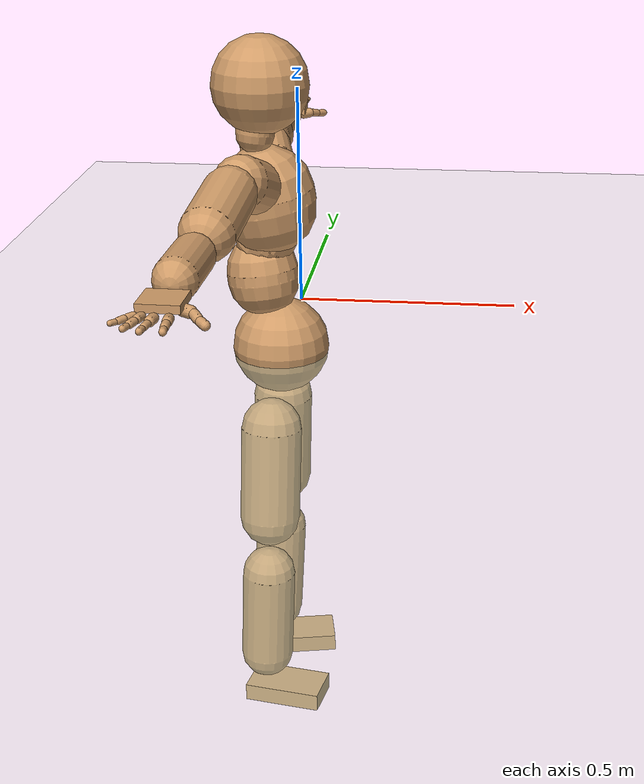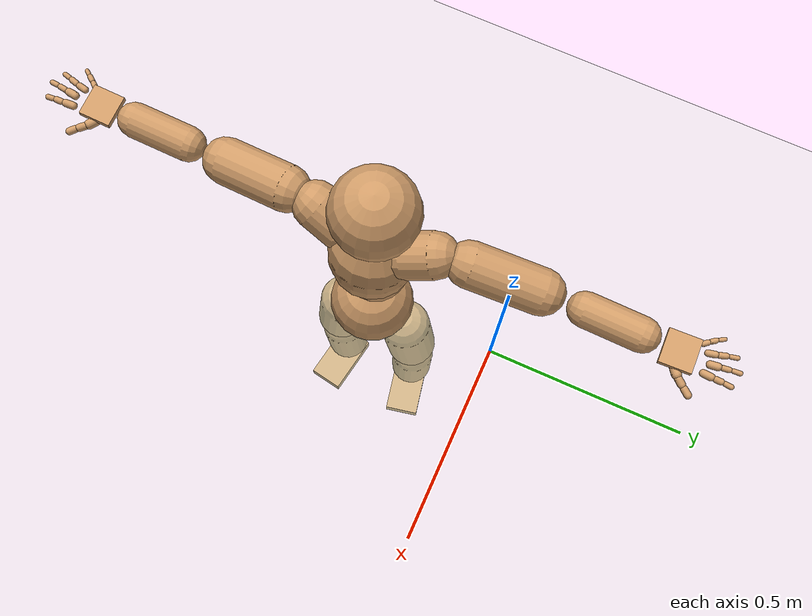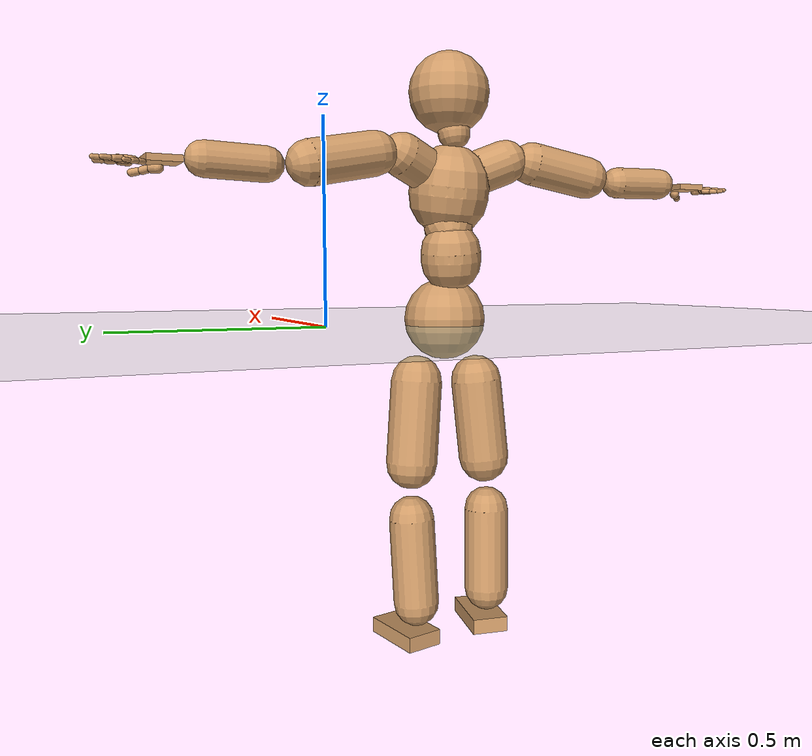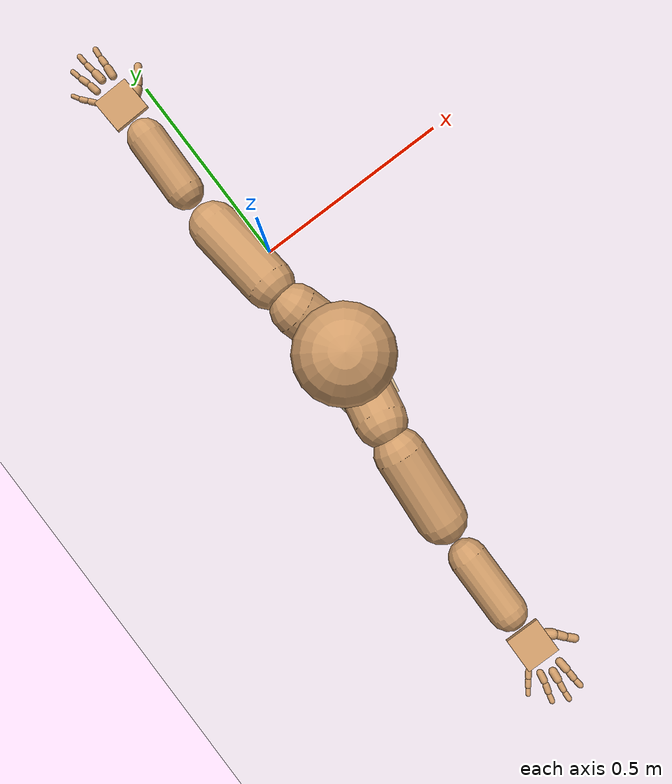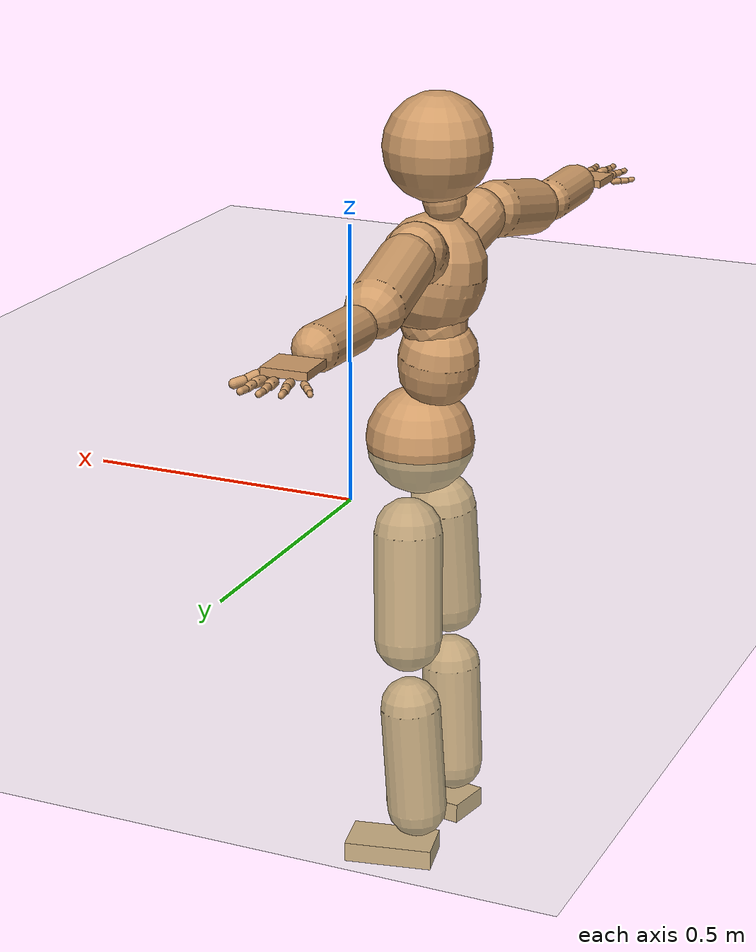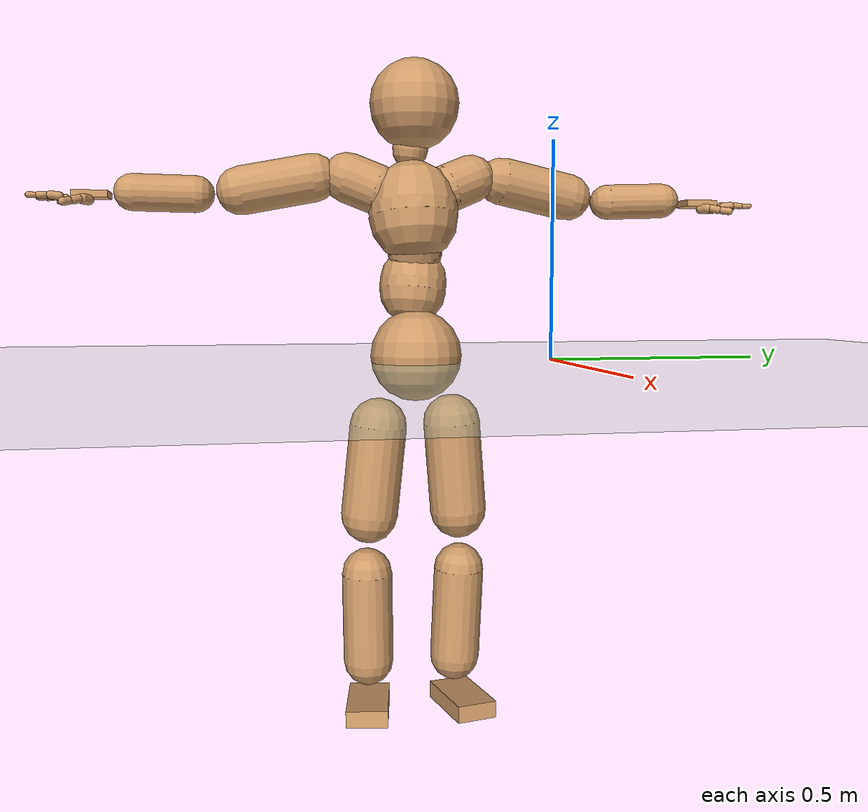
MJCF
<mujoco model="humanoid">
  <compiler coordinate="local" angle="radian"/>
  <default>
    <joint damping="0.0" armature="0.01" stiffness="0.0" limited="true"/>
    <geom conaffinity="1" condim="3" contype="7" margin="0.001" rgba="0.8 0.6 .4 1"/>
  </default>
  <asset>
    <texture type="skybox" builtin="gradient" rgb1=".4 .5 .6" rgb2="0 0 0" width="100" height="100"/>
    <texture builtin="flat" height="1278" mark="cross" markrgb="1 1 1" name="texgeom" random="0.01" rgb1="0.8 0.6 0.4" rgb2="0.8 0.6 0.4" type="cube" width="127"/>
    <texture builtin="checker" height="100" name="texplane" rgb1="0 0 0" rgb2="0.8 0.8 0.8" type="2d" width="100"/>
    <material name="MatPlane" reflectance="0.5" shininess="1" specular="1" texrepeat="60 60" texture="texplane"/>
    <material name="geom" texture="texgeom" texuniform="true"/>
  </asset>
  <worldbody>
    <light cutoff="100" diffuse="1 1 1" dir="-0 0 -1.3" directional="true" exponent="1" pos="0 0 1.3" specular=".1 .1 .1"/>
    <geom conaffinity="1" condim="3" name="floor" pos="0 0 0" rgba="0.8 0.9 0.8 1" size="100 100 .2" type="plane" material="MatPlane"/>
    <body name="Pelvis" pos="0.0008 -0.3178 0.0141">
      <freejoint name="Pelvis"/>
      <geom type="sphere" contype="1" conaffinity="1" density="500" size="0.1032" pos="0.0000 0.0000 0.0000" name="Pelvis"/>
      <body name="L_Hip" pos="-0.0099 0.0789 -0.0863">
        <joint name="L_Hip_x" type="hinge" pos="0 0 0" axis="1 0 0" stiffness="800" damping="80" armature="0.02" range="-180.0000 180.0000"/>
        <joint name="L_Hip_y" type="hinge" pos="0 0 0" axis="0 1 0" stiffness="800" damping="80" armature="0.02" range="-180.0000 180.0000"/>
        <joint name="L_Hip_z" type="hinge" pos="0 0 0" axis="0 0 1" stiffness="800" damping="80" armature="0.02" range="-180.0000 180.0000"/>
        <geom type="capsule" contype="1" conaffinity="1" density="500" fromto="-0.0030 0.0059 -0.0690 -0.0121 0.0237 -0.2758" size="0.0646" name="L_Hip"/>
        <body name="L_Knee" pos="-0.0152 0.0296 -0.3448">
          <joint name="L_Knee_x" type="hinge" pos="0 0 0" axis="1 0 0" stiffness="800" damping="80" armature="0.02" range="-180.0000 180.0000"/>
          <joint name="L_Knee_y" type="hinge" pos="0 0 0" axis="0 1 0" stiffness="800" damping="80" armature="0.02" range="-180.0000 180.0000"/>
          <joint name="L_Knee_z" type="hinge" pos="0 0 0" axis="0 0 1" stiffness="800" damping="80" armature="0.02" range="-180.0000 180.0000"/>
          <geom type="capsule" contype="1" conaffinity="1" density="500" fromto="-0.0042 -0.0022 -0.0715 -0.0167 -0.0089 -0.2858" size="0.0573" name="L_Knee"/>
          <body name="L_Ankle" pos="-0.0209 -0.0111 -0.3573">
            <joint name="L_Ankle_x" type="hinge" pos="0 0 0" axis="1 0 0" stiffness="800" damping="80" armature="0.02" range="-180.0000 180.0000"/>
            <joint name="L_Ankle_y" type="hinge" pos="0 0 0" axis="0 1 0" stiffness="800" damping="80" armature="0.02" range="-180.0000 180.0000"/>
            <joint name="L_Ankle_z" type="hinge" pos="0 0 0" axis="0 0 1" stiffness="800" damping="80" armature="0.02" range="-180.0000 180.0000"/>
            <geom type="box" contype="1" conaffinity="1" density="500" pos="0.0523 0.0106 -0.0200" size="0.0846 0.0467 0.0192" quat="0.9950 0.0000 0.0000 0.0995" name="L_Ankle"/>
            <body name="L_Toe" pos="0.1045 0.0211 -0.04">
              <joint name="L_Toe_x" type="hinge" pos="0 0 0" axis="1 0 0" stiffness="500" damping="50" armature="0.02" range="-180.0000 180.0000"/>
              <joint name="L_Toe_y" type="hinge" pos="0 0 0" axis="0 1 0" stiffness="500" damping="50" armature="0.02" range="-180.0000 180.0000"/>
              <joint name="L_Toe_z" type="hinge" pos="0 0 0" axis="0 0 1" stiffness="500" damping="50" armature="0.02" range="-180.0000 180.0000"/>
              <geom type="box" contype="1" conaffinity="1" density="500" pos="0.0000 0.0000 0.0211" size="0.0009 0.0023 0.001" quat="0.9943 0.0000 0.0000 0.1067" name="L_Toe"/>
            </body>
          </body>
        </body>
      </body>
      <body name="R_Hip" pos="-0.0105 -0.0779 -0.0924">
        <joint name="R_Hip_x" type="hinge" pos="0 0 0" axis="1 0 0" stiffness="800" damping="80" armature="0.02" range="-180.0000 180.0000"/>
        <joint name="R_Hip_y" type="hinge" pos="0 0 0" axis="0 1 0" stiffness="800" damping="80" armature="0.02" range="-180.0000 180.0000"/>
        <joint name="R_Hip_z" type="hinge" pos="0 0 0" axis="0 0 1" stiffness="800" damping="80" armature="0.02" range="-180.0000 180.0000"/>
        <geom type="capsule" contype="1" conaffinity="1" density="500" fromto="-0.0019 -0.0069 -0.0682 -0.0074 -0.0275 -0.2727" size="0.0644" name="R_Hip"/>
        <body name="R_Knee" pos="-0.0093 -0.0344 -0.3409">
          <joint name="R_Knee_x" type="hinge" pos="0 0 0" axis="1 0 0" stiffness="800" damping="80" armature="0.02" range="-180.0000 180.0000"/>
          <joint name="R_Knee_y" type="hinge" pos="0 0 0" axis="0 1 0" stiffness="800" damping="80" armature="0.02" range="-180.0000 180.0000"/>
          <joint name="R_Knee_z" type="hinge" pos="0 0 0" axis="0 0 1" stiffness="800" damping="80" armature="0.02" range="-180.0000 180.0000"/>
          <geom type="capsule" contype="1" conaffinity="1" density="500" fromto="-0.0035 0.0013 -0.0698 -0.0139 0.0053 -0.2791" size="0.0573" name="R_Knee"/>
          <body name="R_Ankle" pos="-0.0174 0.0066 -0.3489">
            <joint name="R_Ankle_x" type="hinge" pos="0 0 0" axis="1 0 0" stiffness="800" damping="80" armature="0.02" range="-180.0000 180.0000"/>
            <joint name="R_Ankle_y" type="hinge" pos="0 0 0" axis="0 1 0" stiffness="800" damping="80" armature="0.02" range="-180.0000 180.0000"/>
            <joint name="R_Ankle_z" type="hinge" pos="0 0 0" axis="0 0 1" stiffness="800" damping="80" armature="0.02" range="-180.0000 180.0000"/>
            <geom type="box" contype="1" conaffinity="1" density="500" pos="0.0491 -0.0086 -0.0216" size="0.0846 0.0467 0.0192" quat="0.9962 0.0000 0.0000 -0.0866" name="R_Ankle"/>
            <body name="R_Toe" pos="0.0982 -0.0172 -0.0433">
              <joint name="R_Toe_x" type="hinge" pos="0 0 0" axis="1 0 0" stiffness="500" damping="50" armature="0.02" range="-180.0000 180.0000"/>
              <joint name="R_Toe_y" type="hinge" pos="0 0 0" axis="0 1 0" stiffness="500" damping="50" armature="0.02" range="-180.0000 180.0000"/>
              <joint name="R_Toe_z" type="hinge" pos="0 0 0" axis="0 0 1" stiffness="500" damping="50" armature="0.02" range="-180.0000 180.0000"/>
              <geom type="box" contype="1" conaffinity="1" density="500" pos="0.0000 0.0000 0.0227" size="0.0009 0.0023 0.001" quat="0.9972 0.0000 0.0000 -0.0752" name="R_Toe"/>
            </body>
          </body>
        </body>
      </body>
      <body name="Torso" pos="-0.0273 -0.0061 0.1003">
        <joint name="Torso_x" type="hinge" pos="0 0 0" axis="1 0 0" stiffness="1000" damping="100" armature="0.02" range="-180.0000 180.0000"/>
        <joint name="Torso_y" type="hinge" pos="0 0 0" axis="0 1 0" stiffness="1000" damping="100" armature="0.02" range="-180.0000 180.0000"/>
        <joint name="Torso_z" type="hinge" pos="0 0 0" axis="0 0 1" stiffness="1000" damping="100" armature="0.02" range="-180.0000 180.0000"/>
        <geom type="capsule" contype="1" conaffinity="1" density="500" fromto="-0.0087 0.0067 0.0676 -0.0058 0.0045 0.0450" size="0.0757" name="Torso"/>
        <body name="Spine" pos="-0.0146 0.0112 0.1126">
          <joint name="Spine_x" type="hinge" pos="0 0 0" axis="1 0 0" stiffness="1000" damping="100" armature="0.02" range="-180.0000 180.0000"/>
          <joint name="Spine_y" type="hinge" pos="0 0 0" axis="0 1 0" stiffness="1000" damping="100" armature="0.02" range="-180.0000 180.0000"/>
          <joint name="Spine_z" type="hinge" pos="0 0 0" axis="0 0 1" stiffness="1000" damping="100" armature="0.02" range="-180.0000 180.0000"/>
          <geom type="capsule" contype="1" conaffinity="1" density="500" fromto="0.0200 -0.0033 0.0261 0.0133 -0.0022 0.0174" size="0.0616" name="Spine"/>
          <body name="Chest" pos="0.0333 -0.0056 0.0435">
            <joint name="Chest_x" type="hinge" pos="0 0 0" axis="1 0 0" stiffness="1000" damping="100" armature="0.02" range="-180.0000 180.0000"/>
            <joint name="Chest_y" type="hinge" pos="0 0 0" axis="0 1 0" stiffness="1000" damping="100" armature="0.02" range="-180.0000 180.0000"/>
            <joint name="Chest_z" type="hinge" pos="0 0 0" axis="0 0 1" stiffness="1000" damping="100" armature="0.02" range="-180.0000 180.0000"/>
            <geom type="capsule" contype="1" conaffinity="1" density="500" fromto="-0.0135 -0.0021 0.0783 -0.0090 -0.0014 0.0522" size="0.1008" name="Chest"/>
            <body name="Neck" pos="-0.0359 -0.0067 0.1788">
              <joint name="Neck_x" type="hinge" pos="0 0 0" axis="1 0 0" stiffness="500" damping="50" armature="0.02" range="-180.0000 180.0000"/>
              <joint name="Neck_y" type="hinge" pos="0 0 0" axis="0 1 0" stiffness="500" damping="50" armature="0.02" range="-180.0000 180.0000"/>
              <joint name="Neck_z" type="hinge" pos="0 0 0" axis="0 0 1" stiffness="500" damping="50" armature="0.02" range="-180.0000 180.0000"/>
              <geom type="capsule" contype="1" conaffinity="1" density="500" fromto="0.0031 0.0019 0.0247 0.0123 0.0075 0.0988" size="0.0404" name="Neck"/>
              <body name="Head" pos="0.0154 0.0094 0.1235">
                <joint name="Head_x" type="hinge" pos="0 0 0" axis="1 0 0" stiffness="500" damping="50" armature="0.02" range="-180.0000 180.0000"/>
                <joint name="Head_y" type="hinge" pos="0 0 0" axis="0 1 0" stiffness="500" damping="50" armature="0.02" range="-180.0000 180.0000"/>
                <joint name="Head_z" type="hinge" pos="0 0 0" axis="0 0 1" stiffness="500" damping="50" armature="0.02" range="-180.0000 180.0000"/>
                <geom type="sphere" contype="1" conaffinity="1" density="500" size="0.1008" pos="0.0000 0.0000 0.0000" name="Head"/>
              </body>
            </body>
            <body name="L_Thorax" pos="-0.0123 0.0555 0.1081">
              <joint name="L_Thorax_x" type="hinge" pos="0 0 0" axis="1 0 0" stiffness="500" damping="50" armature="0.02" range="-180.0000 180.0000"/>
              <joint name="L_Thorax_y" type="hinge" pos="0 0 0" axis="0 1 0" stiffness="500" damping="50" armature="0.02" range="-180.0000 180.0000"/>
              <joint name="L_Thorax_z" type="hinge" pos="0 0 0" axis="0 0 1" stiffness="500" damping="50" armature="0.02" range="-180.0000 180.0000"/>
              <geom type="capsule" contype="1" conaffinity="1" density="500" fromto="-0.0062 0.0201 0.0086 -0.0247 0.0806 0.0343" size="0.0544" name="L_Thorax"/>
              <body name="L_Shoulder" pos="-0.0309 0.1007 0.0429">
                <joint name="L_Shoulder_x" type="hinge" pos="0 0 0" axis="1 0 0" stiffness="500" damping="50" armature="0.02" range="-180.0000 180.0000"/>
                <joint name="L_Shoulder_y" type="hinge" pos="0 0 0" axis="0 1 0" stiffness="500" damping="50" armature="0.02" range="-180.0000 180.0000"/>
                <joint name="L_Shoulder_z" type="hinge" pos="0 0 0" axis="0 0 1" stiffness="500" damping="50" armature="0.02" range="-180.0000 180.0000"/>
                <geom type="capsule" contype="1" conaffinity="1" density="500" fromto="-0.0057 0.0552 -0.0109 -0.0227 0.2208 -0.0436" size="0.0537" name="L_Shoulder"/>
                <body name="L_Elbow" pos="-0.0284 0.276 -0.0544">
                  <joint name="L_Elbow_x" type="hinge" pos="0 0 0" axis="1 0 0" stiffness="500" damping="50" armature="0.02" range="-720.0000 720.0000"/>
                  <joint name="L_Elbow_y" type="hinge" pos="0 0 0" axis="0 1 0" stiffness="500" damping="50" armature="0.02" range="-720.0000 720.0000"/>
                  <joint name="L_Elbow_z" type="hinge" pos="0 0 0" axis="0 0 1" stiffness="500" damping="50" armature="0.02" range="-720.0000 720.0000"/>
                  <geom type="capsule" contype="1" conaffinity="1" density="500" fromto="0.0012 0.0449 0.0016 0.0048 0.1796 0.0063" size="0.0406" name="L_Elbow"/>
                  <body name="L_Wrist" pos="0.006 0.2245 0.0078">
                    <joint name="L_Wrist_x" type="hinge" pos="0 0 0" axis="1 0 0" stiffness="300" damping="30" armature="0.02" range="-180.0000 180.0000"/>
                    <joint name="L_Wrist_y" type="hinge" pos="0 0 0" axis="0 1 0" stiffness="300" damping="30" armature="0.02" range="-180.0000 180.0000"/>
                    <joint name="L_Wrist_z" type="hinge" pos="0 0 0" axis="0 0 1" stiffness="300" damping="30" armature="0.02" range="-180.0000 180.0000"/>
                    <geom type="box" contype="1" conaffinity="1" density="500" pos="-0.0018 0.0422 -0.0082" size="0.0379 0.0404 0.0073" quat="0.7217 0.0000 0.0000 -0.6922" name="L_Wrist"/>
                    <body name="L_Index1" pos="0.0206 0.0994 -0.0146">
                      <joint name="L_Index1_x" type="hinge" pos="0 0 0" axis="1 0 0" stiffness="100" damping="10" armature="0.02" range="-180.0000 180.0000"/>
                      <joint name="L_Index1_y" type="hinge" pos="0 0 0" axis="0 1 0" stiffness="100" damping="10" armature="0.02" range="-180.0000 180.0000"/>
                      <joint name="L_Index1_z" type="hinge" pos="0 0 0" axis="0 0 1" stiffness="100" damping="10" armature="0.02" range="-180.0000 180.0000"/>
                      <geom type="capsule" contype="1" conaffinity="1" density="500" fromto="0.0006 0.0062 0.0005 0.0022 0.0246 0.0022" size="0.0088" name="L_Index1"/>
                      <body name="L_Index2" pos="0.0028 0.0308 0.0027">
                        <joint name="L_Index2_x" type="hinge" pos="0 0 0" axis="1 0 0" stiffness="100" damping="10" armature="0.02" range="-180.0000 180.0000"/>
                        <joint name="L_Index2_y" type="hinge" pos="0 0 0" axis="0 1 0" stiffness="100" damping="10" armature="0.02" range="-180.0000 180.0000"/>
                        <joint name="L_Index2_z" type="hinge" pos="0 0 0" axis="0 0 1" stiffness="100" damping="10" armature="0.02" range="-180.0000 180.0000"/>
                        <geom type="capsule" contype="1" conaffinity="1" density="500" fromto="0.0001 0.0044 -0.0003 0.0003 0.0174 -0.0011" size="0.0073" name="L_Index2"/>
                        <body name="L_Index3" pos="0.0004 0.0218 -0.0014">
                          <joint name="L_Index3_x" type="hinge" pos="0 0 0" axis="1 0 0" stiffness="100" damping="10" armature="0.02" range="-180.0000 180.0000"/>
                          <joint name="L_Index3_y" type="hinge" pos="0 0 0" axis="0 1 0" stiffness="100" damping="10" armature="0.02" range="-180.0000 180.0000"/>
                          <joint name="L_Index3_z" type="hinge" pos="0 0 0" axis="0 0 1" stiffness="100" damping="10" armature="0.02" range="-180.0000 180.0000"/>
                          <geom type="capsule" contype="1" conaffinity="1" density="500" fromto="0.0005 0.0048 0.0001 0.0019 0.0190 0.0005" size="0.0061" name="L_Index3"/>
                        </body>
                      </body>
                    </body>
                    <body name="L_Middle1" pos="-0.0013 0.1061 -0.0121">
                      <joint name="L_Middle1_x" type="hinge" pos="0 0 0" axis="1 0 0" stiffness="100" damping="10" armature="0.02" range="-180.0000 180.0000"/>
                      <joint name="L_Middle1_y" type="hinge" pos="0 0 0" axis="0 1 0" stiffness="100" damping="10" armature="0.02" range="-180.0000 180.0000"/>
                      <joint name="L_Middle1_z" type="hinge" pos="0 0 0" axis="0 0 1" stiffness="100" damping="10" armature="0.02" range="-180.0000 180.0000"/>
                      <geom type="capsule" contype="1" conaffinity="1" density="500" fromto="-0.0007 0.0059 0.0003 -0.0028 0.0235 0.0011" size="0.009" name="L_Middle1"/>
                      <body name="L_Middle2" pos="-0.0035 0.0294 0.0014">
                        <joint name="L_Middle2_x" type="hinge" pos="0 0 0" axis="1 0 0" stiffness="100" damping="10" armature="0.02" range="-180.0000 180.0000"/>
                        <joint name="L_Middle2_y" type="hinge" pos="0 0 0" axis="0 1 0" stiffness="100" damping="10" armature="0.02" range="-180.0000 180.0000"/>
                        <joint name="L_Middle2_z" type="hinge" pos="0 0 0" axis="0 0 1" stiffness="100" damping="10" armature="0.02" range="-180.0000 180.0000"/>
                        <geom type="capsule" contype="1" conaffinity="1" density="500" fromto="-0.0007 0.0045 -0.0001 -0.0028 0.0182 -0.0005" size="0.0066" name="L_Middle2"/>
                        <body name="L_Middle3" pos="-0.0035 0.0227 -0.0006">
                          <joint name="L_Middle3_x" type="hinge" pos="0 0 0" axis="1 0 0" stiffness="100" damping="10" armature="0.02" range="-180.0000 180.0000"/>
                          <joint name="L_Middle3_y" type="hinge" pos="0 0 0" axis="0 1 0" stiffness="100" damping="10" armature="0.02" range="-180.0000 180.0000"/>
                          <joint name="L_Middle3_z" type="hinge" pos="0 0 0" axis="0 0 1" stiffness="100" damping="10" armature="0.02" range="-180.0000 180.0000"/>
                          <geom type="capsule" contype="1" conaffinity="1" density="500" fromto="-0.0003 0.0049 0.0003 -0.0012 0.0198 0.0011" size="0.0057" name="L_Middle3"/>
                        </body>
                      </body>
                    </body>
                    <body name="L_Pinky1" pos="-0.0393 0.0812 -0.0191">
                      <joint name="L_Pinky1_x" type="hinge" pos="0 0 0" axis="1 0 0" stiffness="100" damping="10" armature="0.02" range="-180.0000 180.0000"/>
                      <joint name="L_Pinky1_y" type="hinge" pos="0 0 0" axis="0 1 0" stiffness="100" damping="10" armature="0.02" range="-180.0000 180.0000"/>
                      <joint name="L_Pinky1_z" type="hinge" pos="0 0 0" axis="0 0 1" stiffness="100" damping="10" armature="0.02" range="-180.0000 180.0000"/>
                      <geom type="capsule" contype="1" conaffinity="1" density="500" fromto="-0.0024 0.0029 -0.0001 -0.0095 0.0115 -0.0004" size="0.0065" name="L_Pinky1"/>
                      <body name="L_Pinky2" pos="-0.0119 0.0144 -0.0005">
                        <joint name="L_Pinky2_x" type="hinge" pos="0 0 0" axis="1 0 0" stiffness="100" damping="10" armature="0.02" range="-180.0000 180.0000"/>
                        <joint name="L_Pinky2_y" type="hinge" pos="0 0 0" axis="0 1 0" stiffness="100" damping="10" armature="0.02" range="-180.0000 180.0000"/>
                        <joint name="L_Pinky2_z" type="hinge" pos="0 0 0" axis="0 0 1" stiffness="100" damping="10" armature="0.02" range="-180.0000 180.0000"/>
                        <geom type="capsule" contype="1" conaffinity="1" density="500" fromto="-0.0023 0.0029 -0.0002 -0.0092 0.0117 -0.0008" size="0.0063" name="L_Pinky2"/>
                        <body name="L_Pinky3" pos="-0.0115 0.0147 -0.001">
                          <joint name="L_Pinky3_x" type="hinge" pos="0 0 0" axis="1 0 0" stiffness="100" damping="10" armature="0.02" range="-180.0000 180.0000"/>
                          <joint name="L_Pinky3_y" type="hinge" pos="0 0 0" axis="0 1 0" stiffness="100" damping="10" armature="0.02" range="-180.0000 180.0000"/>
                          <joint name="L_Pinky3_z" type="hinge" pos="0 0 0" axis="0 0 1" stiffness="100" damping="10" armature="0.02" range="-180.0000 180.0000"/>
                          <geom type="capsule" contype="1" conaffinity="1" density="500" fromto="-0.0019 0.0033 0.0002 -0.0076 0.0133 0.0008" size="0.0048" name="L_Pinky3"/>
                        </body>
                      </body>
                    </body>
                    <body name="L_Ring1" pos="-0.0237 0.0942 -0.0144">
                      <joint name="L_Ring1_x" type="hinge" pos="0 0 0" axis="1 0 0" stiffness="100" damping="10" armature="0.02" range="-180.0000 180.0000"/>
                      <joint name="L_Ring1_y" type="hinge" pos="0 0 0" axis="0 1 0" stiffness="100" damping="10" armature="0.02" range="-180.0000 180.0000"/>
                      <joint name="L_Ring1_z" type="hinge" pos="0 0 0" axis="0 0 1" stiffness="100" damping="10" armature="0.02" range="-180.0000 180.0000"/>
                      <geom type="capsule" contype="1" conaffinity="1" density="500" fromto="-0.0010 0.0053 0.0003 -0.0041 0.0214 0.0012" size="0.0078" name="L_Ring1"/>
                      <body name="L_Ring2" pos="-0.0052 0.0267 0.0015">
                        <joint name="L_Ring2_x" type="hinge" pos="0 0 0" axis="1 0 0" stiffness="100" damping="10" armature="0.02" range="-180.0000 180.0000"/>
                        <joint name="L_Ring2_y" type="hinge" pos="0 0 0" axis="0 1 0" stiffness="100" damping="10" armature="0.02" range="-180.0000 180.0000"/>
                        <joint name="L_Ring2_z" type="hinge" pos="0 0 0" axis="0 0 1" stiffness="100" damping="10" armature="0.02" range="-180.0000 180.0000"/>
                        <geom type="capsule" contype="1" conaffinity="1" density="500" fromto="-0.0014 0.0044 -0.0002 -0.0056 0.0175 -0.0008" size="0.0071" name="L_Ring2"/>
                        <body name="L_Ring3" pos="-0.007 0.0219 -0.001">
                          <joint name="L_Ring3_x" type="hinge" pos="0 0 0" axis="1 0 0" stiffness="100" damping="10" armature="0.02" range="-180.0000 180.0000"/>
                          <joint name="L_Ring3_y" type="hinge" pos="0 0 0" axis="0 1 0" stiffness="100" damping="10" armature="0.02" range="-180.0000 180.0000"/>
                          <joint name="L_Ring3_z" type="hinge" pos="0 0 0" axis="0 0 1" stiffness="100" damping="10" armature="0.02" range="-180.0000 180.0000"/>
                          <geom type="capsule" contype="1" conaffinity="1" density="500" fromto="-0.0010 0.0048 0.0002 -0.0040 0.0191 0.0008" size="0.0055" name="L_Ring3"/>
                        </body>
                      </body>
                    </body>
                    <body name="L_Thumb1" pos="0.0262 0.0414 -0.0222">
                      <joint name="L_Thumb1_x" type="hinge" pos="0 0 0" axis="1 0 0" stiffness="100" damping="10" armature="0.02" range="-180.0000 180.0000"/>
                      <joint name="L_Thumb1_y" type="hinge" pos="0 0 0" axis="0 1 0" stiffness="100" damping="10" armature="0.02" range="-180.0000 180.0000"/>
                      <joint name="L_Thumb1_z" type="hinge" pos="0 0 0" axis="0 0 1" stiffness="100" damping="10" armature="0.02" range="-180.0000 180.0000"/>
                      <geom type="capsule" contype="1" conaffinity="1" density="500" fromto="0.0046 0.0033 0.0002 0.0185 0.0134 0.0009" size="0.0115" name="L_Thumb1"/>
                      <body name="L_Thumb2" pos="0.0231 0.0167 0.0012">
                        <joint name="L_Thumb2_x" type="hinge" pos="0 0 0" axis="1 0 0" stiffness="100" damping="10" armature="0.02" range="-180.0000 180.0000"/>
                        <joint name="L_Thumb2_y" type="hinge" pos="0 0 0" axis="0 1 0" stiffness="100" damping="10" armature="0.02" range="-180.0000 180.0000"/>
                        <joint name="L_Thumb2_z" type="hinge" pos="0 0 0" axis="0 0 1" stiffness="100" damping="10" armature="0.02" range="-180.0000 180.0000"/>
                        <geom type="capsule" contype="1" conaffinity="1" density="500" fromto="0.0028 0.0039 -0.0011 0.0111 0.0156 -0.0046" size="0.0091" name="L_Thumb2"/>
                        <body name="L_Thumb3" pos="0.0138 0.0195 -0.0057">
                          <joint name="L_Thumb3_x" type="hinge" pos="0 0 0" axis="1 0 0" stiffness="100" damping="10" armature="0.02" range="-180.0000 180.0000"/>
                          <joint name="L_Thumb3_y" type="hinge" pos="0 0 0" axis="0 1 0" stiffness="100" damping="10" armature="0.02" range="-180.0000 180.0000"/>
                          <joint name="L_Thumb3_z" type="hinge" pos="0 0 0" axis="0 0 1" stiffness="100" damping="10" armature="0.02" range="-180.0000 180.0000"/>
                          <geom type="capsule" contype="1" conaffinity="1" density="500" fromto="0.0032 0.0043 -0.0007 0.0127 0.0172 -0.0030" size="0.0085" name="L_Thumb3"/>
                        </body>
                      </body>
                    </body>
                  </body>
                </body>
              </body>
            </body>
            <body name="R_Thorax" pos="-0.019 -0.0593 0.1048">
              <joint name="R_Thorax_x" type="hinge" pos="0 0 0" axis="1 0 0" stiffness="500" damping="50" armature="0.02" range="-180.0000 180.0000"/>
              <joint name="R_Thorax_y" type="hinge" pos="0 0 0" axis="0 1 0" stiffness="500" damping="50" armature="0.02" range="-180.0000 180.0000"/>
              <joint name="R_Thorax_z" type="hinge" pos="0 0 0" axis="0 0 1" stiffness="500" damping="50" armature="0.02" range="-180.0000 180.0000"/>
              <geom type="capsule" contype="1" conaffinity="1" density="500" fromto="-0.0047 -0.0219 0.0088 -0.0187 -0.0875 0.0354" size="0.0556" name="R_Thorax"/>
              <body name="R_Shoulder" pos="-0.0233 -0.1094 0.0442">
                <joint name="R_Shoulder_x" type="hinge" pos="0 0 0" axis="1 0 0" stiffness="500" damping="50" armature="0.02" range="-180.0000 180.0000"/>
                <joint name="R_Shoulder_y" type="hinge" pos="0 0 0" axis="0 1 0" stiffness="500" damping="50" armature="0.02" range="-180.0000 180.0000"/>
                <joint name="R_Shoulder_z" type="hinge" pos="0 0 0" axis="0 0 1" stiffness="500" damping="50" armature="0.02" range="-180.0000 180.0000"/>
                <geom type="capsule" contype="1" conaffinity="1" density="500" fromto="-0.0043 -0.0530 -0.0098 -0.0173 -0.2119 -0.0394" size="0.0542" name="R_Shoulder"/>
                <body name="R_Elbow" pos="-0.0216 -0.2648 -0.0492">
                  <joint name="R_Elbow_x" type="hinge" pos="0 0 0" axis="1 0 0" stiffness="500" damping="50" armature="0.02" range="-720.0000 720.0000"/>
                  <joint name="R_Elbow_y" type="hinge" pos="0 0 0" axis="0 1 0" stiffness="500" damping="50" armature="0.02" range="-720.0000 720.0000"/>
                  <joint name="R_Elbow_z" type="hinge" pos="0 0 0" axis="0 0 1" stiffness="500" damping="50" armature="0.02" range="-720.0000 720.0000"/>
                  <geom type="capsule" contype="1" conaffinity="1" density="500" fromto="-0.0006 -0.0450 0.0007 -0.0026 -0.1800 0.0030" size="0.0407" name="R_Elbow"/>
                  <body name="R_Wrist" pos="-0.0032 -0.225 0.0037">
                    <joint name="R_Wrist_x" type="hinge" pos="0 0 0" axis="1 0 0" stiffness="300" damping="30" armature="0.02" range="-180.0000 180.0000"/>
                    <joint name="R_Wrist_y" type="hinge" pos="0 0 0" axis="0 1 0" stiffness="300" damping="30" armature="0.02" range="-180.0000 180.0000"/>
                    <joint name="R_Wrist_z" type="hinge" pos="0 0 0" axis="0 0 1" stiffness="300" damping="30" armature="0.02" range="-180.0000 180.0000"/>
                    <geom type="box" contype="1" conaffinity="1" density="500" pos="-0.0010 -0.0417 -0.0078" size="0.0379 0.0379 0.0075" quat="0.7153 0.0000 0.0000 0.6988" name="R_Wrist"/>
                    <body name="R_Index1" pos="0.0222 -0.0983 -0.0137">
                      <joint name="R_Index1_x" type="hinge" pos="0 0 0" axis="1 0 0" stiffness="100" damping="10" armature="0.02" range="-180.0000 180.0000"/>
                      <joint name="R_Index1_y" type="hinge" pos="0 0 0" axis="0 1 0" stiffness="100" damping="10" armature="0.02" range="-180.0000 180.0000"/>
                      <joint name="R_Index1_z" type="hinge" pos="0 0 0" axis="0 0 1" stiffness="100" damping="10" armature="0.02" range="-180.0000 180.0000"/>
                      <geom type="capsule" contype="1" conaffinity="1" density="500" fromto="0.0006 -0.0062 0.0005 0.0022 -0.0246 0.0022" size="0.0088" name="R_Index1"/>
                      <body name="R_Index2" pos="0.0028 -0.0308 0.0027">
                        <joint name="R_Index2_x" type="hinge" pos="0 0 0" axis="1 0 0" stiffness="100" damping="10" armature="0.02" range="-180.0000 180.0000"/>
                        <joint name="R_Index2_y" type="hinge" pos="0 0 0" axis="0 1 0" stiffness="100" damping="10" armature="0.02" range="-180.0000 180.0000"/>
                        <joint name="R_Index2_z" type="hinge" pos="0 0 0" axis="0 0 1" stiffness="100" damping="10" armature="0.02" range="-180.0000 180.0000"/>
                        <geom type="capsule" contype="1" conaffinity="1" density="500" fromto="0.0001 -0.0044 -0.0003 0.0003 -0.0174 -0.0011" size="0.0073" name="R_Index2"/>
                        <body name="R_Index3" pos="0.0004 -0.0218 -0.0014">
                          <joint name="R_Index3_x" type="hinge" pos="0 0 0" axis="1 0 0" stiffness="100" damping="10" armature="0.02" range="-180.0000 180.0000"/>
                          <joint name="R_Index3_y" type="hinge" pos="0 0 0" axis="0 1 0" stiffness="100" damping="10" armature="0.02" range="-180.0000 180.0000"/>
                          <joint name="R_Index3_z" type="hinge" pos="0 0 0" axis="0 0 1" stiffness="100" damping="10" armature="0.02" range="-180.0000 180.0000"/>
                          <geom type="capsule" contype="1" conaffinity="1" density="500" fromto="0.0005 -0.0040 0.0001 0.0019 -0.0158 0.0005" size="0.0064" name="R_Index3"/>
                        </body>
                      </body>
                    </body>
                    <body name="R_Middle1" pos="0.0003 -0.105 -0.0112">
                      <joint name="R_Middle1_x" type="hinge" pos="0 0 0" axis="1 0 0" stiffness="100" damping="10" armature="0.02" range="-180.0000 180.0000"/>
                      <joint name="R_Middle1_y" type="hinge" pos="0 0 0" axis="0 1 0" stiffness="100" damping="10" armature="0.02" range="-180.0000 180.0000"/>
                      <joint name="R_Middle1_z" type="hinge" pos="0 0 0" axis="0 0 1" stiffness="100" damping="10" armature="0.02" range="-180.0000 180.0000"/>
                      <geom type="capsule" contype="1" conaffinity="1" density="500" fromto="-0.0007 -0.0059 0.0003 -0.0028 -0.0235 0.0011" size="0.009" name="R_Middle1"/>
                      <body name="R_Middle2" pos="-0.0035 -0.0294 0.0014">
                        <joint name="R_Middle2_x" type="hinge" pos="0 0 0" axis="1 0 0" stiffness="100" damping="10" armature="0.02" range="-180.0000 180.0000"/>
                        <joint name="R_Middle2_y" type="hinge" pos="0 0 0" axis="0 1 0" stiffness="100" damping="10" armature="0.02" range="-180.0000 180.0000"/>
                        <joint name="R_Middle2_z" type="hinge" pos="0 0 0" axis="0 0 1" stiffness="100" damping="10" armature="0.02" range="-180.0000 180.0000"/>
                        <geom type="capsule" contype="1" conaffinity="1" density="500" fromto="-0.0007 -0.0045 -0.0001 -0.0028 -0.0182 -0.0005" size="0.0066" name="R_Middle2"/>
                        <body name="R_Middle3" pos="-0.0035 -0.0227 -0.0007">
                          <joint name="R_Middle3_x" type="hinge" pos="0 0 0" axis="1 0 0" stiffness="100" damping="10" armature="0.02" range="-180.0000 180.0000"/>
                          <joint name="R_Middle3_y" type="hinge" pos="0 0 0" axis="0 1 0" stiffness="100" damping="10" armature="0.02" range="-180.0000 180.0000"/>
                          <joint name="R_Middle3_z" type="hinge" pos="0 0 0" axis="0 0 1" stiffness="100" damping="10" armature="0.02" range="-180.0000 180.0000"/>
                          <geom type="capsule" contype="1" conaffinity="1" density="500" fromto="-0.0003 -0.0041 0.0003 -0.0012 -0.0166 0.0011" size="0.006" name="R_Middle3"/>
                        </body>
                      </body>
                    </body>
                    <body name="R_Pinky1" pos="-0.0377 -0.0801 -0.0182">
                      <joint name="R_Pinky1_x" type="hinge" pos="0 0 0" axis="1 0 0" stiffness="100" damping="10" armature="0.02" range="-180.0000 180.0000"/>
                      <joint name="R_Pinky1_y" type="hinge" pos="0 0 0" axis="0 1 0" stiffness="100" damping="10" armature="0.02" range="-180.0000 180.0000"/>
                      <joint name="R_Pinky1_z" type="hinge" pos="0 0 0" axis="0 0 1" stiffness="100" damping="10" armature="0.02" range="-180.0000 180.0000"/>
                      <geom type="capsule" contype="1" conaffinity="1" density="500" fromto="-0.0024 -0.0029 -0.0001 -0.0095 -0.0115 -0.0004" size="0.0065" name="R_Pinky1"/>
                      <body name="R_Pinky2" pos="-0.0119 -0.0144 -0.0005">
                        <joint name="R_Pinky2_x" type="hinge" pos="0 0 0" axis="1 0 0" stiffness="100" damping="10" armature="0.02" range="-180.0000 180.0000"/>
                        <joint name="R_Pinky2_y" type="hinge" pos="0 0 0" axis="0 1 0" stiffness="100" damping="10" armature="0.02" range="-180.0000 180.0000"/>
                        <joint name="R_Pinky2_z" type="hinge" pos="0 0 0" axis="0 0 1" stiffness="100" damping="10" armature="0.02" range="-180.0000 180.0000"/>
                        <geom type="capsule" contype="1" conaffinity="1" density="500" fromto="-0.0023 -0.0029 -0.0002 -0.0092 -0.0117 -0.0008" size="0.0063" name="R_Pinky2"/>
                        <body name="R_Pinky3" pos="-0.0115 -0.0147 -0.001">
                          <joint name="R_Pinky3_x" type="hinge" pos="0 0 0" axis="1 0 0" stiffness="100" damping="10" armature="0.02" range="-180.0000 180.0000"/>
                          <joint name="R_Pinky3_y" type="hinge" pos="0 0 0" axis="0 1 0" stiffness="100" damping="10" armature="0.02" range="-180.0000 180.0000"/>
                          <joint name="R_Pinky3_z" type="hinge" pos="0 0 0" axis="0 0 1" stiffness="100" damping="10" armature="0.02" range="-180.0000 180.0000"/>
                          <geom type="capsule" contype="1" conaffinity="1" density="500" fromto="-0.0019 -0.0025 0.0002 -0.0076 -0.0101 0.0008" size="0.0051" name="R_Pinky3"/>
                        </body>
                      </body>
                    </body>
                    <body name="R_Ring1" pos="-0.0221 -0.0931 -0.0135">
                      <joint name="R_Ring1_x" type="hinge" pos="0 0 0" axis="1 0 0" stiffness="100" damping="10" armature="0.02" range="-180.0000 180.0000"/>
                      <joint name="R_Ring1_y" type="hinge" pos="0 0 0" axis="0 1 0" stiffness="100" damping="10" armature="0.02" range="-180.0000 180.0000"/>
                      <joint name="R_Ring1_z" type="hinge" pos="0 0 0" axis="0 0 1" stiffness="100" damping="10" armature="0.02" range="-180.0000 180.0000"/>
                      <geom type="capsule" contype="1" conaffinity="1" density="500" fromto="-0.0010 -0.0053 0.0003 -0.0041 -0.0214 0.0012" size="0.0078" name="R_Ring1"/>
                      <body name="R_Ring2" pos="-0.0052 -0.0267 0.0015">
                        <joint name="R_Ring2_x" type="hinge" pos="0 0 0" axis="1 0 0" stiffness="100" damping="10" armature="0.02" range="-180.0000 180.0000"/>
                        <joint name="R_Ring2_y" type="hinge" pos="0 0 0" axis="0 1 0" stiffness="100" damping="10" armature="0.02" range="-180.0000 180.0000"/>
                        <joint name="R_Ring2_z" type="hinge" pos="0 0 0" axis="0 0 1" stiffness="100" damping="10" armature="0.02" range="-180.0000 180.0000"/>
                        <geom type="capsule" contype="1" conaffinity="1" density="500" fromto="-0.0014 -0.0044 -0.0002 -0.0056 -0.0175 -0.0008" size="0.0071" name="R_Ring2"/>
                        <body name="R_Ring3" pos="-0.007 -0.0219 -0.001">
                          <joint name="R_Ring3_x" type="hinge" pos="0 0 0" axis="1 0 0" stiffness="100" damping="10" armature="0.02" range="-180.0000 180.0000"/>
                          <joint name="R_Ring3_y" type="hinge" pos="0 0 0" axis="0 1 0" stiffness="100" damping="10" armature="0.02" range="-180.0000 180.0000"/>
                          <joint name="R_Ring3_z" type="hinge" pos="0 0 0" axis="0 0 1" stiffness="100" damping="10" armature="0.02" range="-180.0000 180.0000"/>
                          <geom type="capsule" contype="1" conaffinity="1" density="500" fromto="-0.0010 -0.0040 0.0002 -0.0040 -0.0159 0.0008" size="0.0058" name="R_Ring3"/>
                        </body>
                      </body>
                    </body>
                    <body name="R_Thumb1" pos="0.0278 -0.0403 -0.0213">
                      <joint name="R_Thumb1_x" type="hinge" pos="0 0 0" axis="1 0 0" stiffness="100" damping="10" armature="0.02" range="-180.0000 180.0000"/>
                      <joint name="R_Thumb1_y" type="hinge" pos="0 0 0" axis="0 1 0" stiffness="100" damping="10" armature="0.02" range="-180.0000 180.0000"/>
                      <joint name="R_Thumb1_z" type="hinge" pos="0 0 0" axis="0 0 1" stiffness="100" damping="10" armature="0.02" range="-180.0000 180.0000"/>
                      <geom type="capsule" contype="1" conaffinity="1" density="500" fromto="0.0046 -0.0033 0.0002 0.0185 -0.0134 0.0009" size="0.0115" name="R_Thumb1"/>
                      <body name="R_Thumb2" pos="0.0231 -0.0167 0.0012">
                        <joint name="R_Thumb2_x" type="hinge" pos="0 0 0" axis="1 0 0" stiffness="100" damping="10" armature="0.02" range="-180.0000 180.0000"/>
                        <joint name="R_Thumb2_y" type="hinge" pos="0 0 0" axis="0 1 0" stiffness="100" damping="10" armature="0.02" range="-180.0000 180.0000"/>
                        <joint name="R_Thumb2_z" type="hinge" pos="0 0 0" axis="0 0 1" stiffness="100" damping="10" armature="0.02" range="-180.0000 180.0000"/>
                        <geom type="capsule" contype="1" conaffinity="1" density="500" fromto="0.0028 -0.0039 -0.0011 0.0111 -0.0156 -0.0046" size="0.0091" name="R_Thumb2"/>
                        <body name="R_Thumb3" pos="0.0138 -0.0195 -0.0057">
                          <joint name="R_Thumb3_x" type="hinge" pos="0 0 0" axis="1 0 0" stiffness="100" damping="10" armature="0.02" range="-180.0000 180.0000"/>
                          <joint name="R_Thumb3_y" type="hinge" pos="0 0 0" axis="0 1 0" stiffness="100" damping="10" armature="0.02" range="-180.0000 180.0000"/>
                          <joint name="R_Thumb3_z" type="hinge" pos="0 0 0" axis="0 0 1" stiffness="100" damping="10" armature="0.02" range="-180.0000 180.0000"/>
                          <geom type="capsule" contype="1" conaffinity="1" density="500" fromto="0.0032 -0.0035 -0.0007 0.0127 -0.0140 -0.0030" size="0.0087" name="R_Thumb3"/>
                        </body>
                      </body>
                    </body>
                  </body>
                </body>
              </body>
            </body>
          </body>
        </body>
      </body>
    </body>
  </worldbody>
  <actuator>
    <motor name="L_Hip_x" joint="L_Hip_x" gear="500"/>
    <motor name="L_Hip_y" joint="L_Hip_y" gear="500"/>
    <motor name="L_Hip_z" joint="L_Hip_z" gear="500"/>
    <motor name="L_Knee_x" joint="L_Knee_x" gear="500"/>
    <motor name="L_Knee_y" joint="L_Knee_y" gear="500"/>
    <motor name="L_Knee_z" joint="L_Knee_z" gear="500"/>
    <motor name="L_Ankle_x" joint="L_Ankle_x" gear="500"/>
    <motor name="L_Ankle_y" joint="L_Ankle_y" gear="500"/>
    <motor name="L_Ankle_z" joint="L_Ankle_z" gear="500"/>
    <motor name="L_Toe_x" joint="L_Toe_x" gear="500"/>
    <motor name="L_Toe_y" joint="L_Toe_y" gear="500"/>
    <motor name="L_Toe_z" joint="L_Toe_z" gear="500"/>
    <motor name="R_Hip_x" joint="R_Hip_x" gear="500"/>
    <motor name="R_Hip_y" joint="R_Hip_y" gear="500"/>
    <motor name="R_Hip_z" joint="R_Hip_z" gear="500"/>
    <motor name="R_Knee_x" joint="R_Knee_x" gear="500"/>
    <motor name="R_Knee_y" joint="R_Knee_y" gear="500"/>
    <motor name="R_Knee_z" joint="R_Knee_z" gear="500"/>
    <motor name="R_Ankle_x" joint="R_Ankle_x" gear="500"/>
    <motor name="R_Ankle_y" joint="R_Ankle_y" gear="500"/>
    <motor name="R_Ankle_z" joint="R_Ankle_z" gear="500"/>
    <motor name="R_Toe_x" joint="R_Toe_x" gear="500"/>
    <motor name="R_Toe_y" joint="R_Toe_y" gear="500"/>
    <motor name="R_Toe_z" joint="R_Toe_z" gear="500"/>
    <motor name="Torso_x" joint="Torso_x" gear="500"/>
    <motor name="Torso_y" joint="Torso_y" gear="500"/>
    <motor name="Torso_z" joint="Torso_z" gear="500"/>
    <motor name="Spine_x" joint="Spine_x" gear="500"/>
    <motor name="Spine_y" joint="Spine_y" gear="500"/>
    <motor name="Spine_z" joint="Spine_z" gear="500"/>
    <motor name="Chest_x" joint="Chest_x" gear="500"/>
    <motor name="Chest_y" joint="Chest_y" gear="500"/>
    <motor name="Chest_z" joint="Chest_z" gear="500"/>
    <motor name="Neck_x" joint="Neck_x" gear="500"/>
    <motor name="Neck_y" joint="Neck_y" gear="500"/>
    <motor name="Neck_z" joint="Neck_z" gear="500"/>
    <motor name="Head_x" joint="Head_x" gear="500"/>
    <motor name="Head_y" joint="Head_y" gear="500"/>
    <motor name="Head_z" joint="Head_z" gear="500"/>
    <motor name="L_Thorax_x" joint="L_Thorax_x" gear="500"/>
    <motor name="L_Thorax_y" joint="L_Thorax_y" gear="500"/>
    <motor name="L_Thorax_z" joint="L_Thorax_z" gear="500"/>
    <motor name="L_Shoulder_x" joint="L_Shoulder_x" gear="500"/>
    <motor name="L_Shoulder_y" joint="L_Shoulder_y" gear="500"/>
    <motor name="L_Shoulder_z" joint="L_Shoulder_z" gear="500"/>
    <motor name="L_Elbow_x" joint="L_Elbow_x" gear="500"/>
    <motor name="L_Elbow_y" joint="L_Elbow_y" gear="500"/>
    <motor name="L_Elbow_z" joint="L_Elbow_z" gear="500"/>
    <motor name="L_Wrist_x" joint="L_Wrist_x" gear="500"/>
    <motor name="L_Wrist_y" joint="L_Wrist_y" gear="500"/>
    <motor name="L_Wrist_z" joint="L_Wrist_z" gear="500"/>
    <motor name="L_Index1_x" joint="L_Index1_x" gear="500"/>
    <motor name="L_Index1_y" joint="L_Index1_y" gear="500"/>
    <motor name="L_Index1_z" joint="L_Index1_z" gear="500"/>
    <motor name="L_Index2_x" joint="L_Index2_x" gear="500"/>
    <motor name="L_Index2_y" joint="L_Index2_y" gear="500"/>
    <motor name="L_Index2_z" joint="L_Index2_z" gear="500"/>
    <motor name="L_Index3_x" joint="L_Index3_x" gear="500"/>
    <motor name="L_Index3_y" joint="L_Index3_y" gear="500"/>
    <motor name="L_Index3_z" joint="L_Index3_z" gear="500"/>
    <motor name="L_Middle1_x" joint="L_Middle1_x" gear="500"/>
    <motor name="L_Middle1_y" joint="L_Middle1_y" gear="500"/>
    <motor name="L_Middle1_z" joint="L_Middle1_z" gear="500"/>
    <motor name="L_Middle2_x" joint="L_Middle2_x" gear="500"/>
    <motor name="L_Middle2_y" joint="L_Middle2_y" gear="500"/>
    <motor name="L_Middle2_z" joint="L_Middle2_z" gear="500"/>
    <motor name="L_Middle3_x" joint="L_Middle3_x" gear="500"/>
    <motor name="L_Middle3_y" joint="L_Middle3_y" gear="500"/>
    <motor name="L_Middle3_z" joint="L_Middle3_z" gear="500"/>
    <motor name="L_Pinky1_x" joint="L_Pinky1_x" gear="500"/>
    <motor name="L_Pinky1_y" joint="L_Pinky1_y" gear="500"/>
    <motor name="L_Pinky1_z" joint="L_Pinky1_z" gear="500"/>
    <motor name="L_Pinky2_x" joint="L_Pinky2_x" gear="500"/>
    <motor name="L_Pinky2_y" joint="L_Pinky2_y" gear="500"/>
    <motor name="L_Pinky2_z" joint="L_Pinky2_z" gear="500"/>
    <motor name="L_Pinky3_x" joint="L_Pinky3_x" gear="500"/>
    <motor name="L_Pinky3_y" joint="L_Pinky3_y" gear="500"/>
    <motor name="L_Pinky3_z" joint="L_Pinky3_z" gear="500"/>
    <motor name="L_Ring1_x" joint="L_Ring1_x" gear="500"/>
    <motor name="L_Ring1_y" joint="L_Ring1_y" gear="500"/>
    <motor name="L_Ring1_z" joint="L_Ring1_z" gear="500"/>
    <motor name="L_Ring2_x" joint="L_Ring2_x" gear="500"/>
    <motor name="L_Ring2_y" joint="L_Ring2_y" gear="500"/>
    <motor name="L_Ring2_z" joint="L_Ring2_z" gear="500"/>
    <motor name="L_Ring3_x" joint="L_Ring3_x" gear="500"/>
    <motor name="L_Ring3_y" joint="L_Ring3_y" gear="500"/>
    <motor name="L_Ring3_z" joint="L_Ring3_z" gear="500"/>
    <motor name="L_Thumb1_x" joint="L_Thumb1_x" gear="500"/>
    <motor name="L_Thumb1_y" joint="L_Thumb1_y" gear="500"/>
    <motor name="L_Thumb1_z" joint="L_Thumb1_z" gear="500"/>
    <motor name="L_Thumb2_x" joint="L_Thumb2_x" gear="500"/>
    <motor name="L_Thumb2_y" joint="L_Thumb2_y" gear="500"/>
    <motor name="L_Thumb2_z" joint="L_Thumb2_z" gear="500"/>
    <motor name="L_Thumb3_x" joint="L_Thumb3_x" gear="500"/>
    <motor name="L_Thumb3_y" joint="L_Thumb3_y" gear="500"/>
    <motor name="L_Thumb3_z" joint="L_Thumb3_z" gear="500"/>
    <motor name="R_Thorax_x" joint="R_Thorax_x" gear="500"/>
    <motor name="R_Thorax_y" joint="R_Thorax_y" gear="500"/>
    <motor name="R_Thorax_z" joint="R_Thorax_z" gear="500"/>
    <motor name="R_Shoulder_x" joint="R_Shoulder_x" gear="500"/>
    <motor name="R_Shoulder_y" joint="R_Shoulder_y" gear="500"/>
    <motor name="R_Shoulder_z" joint="R_Shoulder_z" gear="500"/>
    <motor name="R_Elbow_x" joint="R_Elbow_x" gear="500"/>
    <motor name="R_Elbow_y" joint="R_Elbow_y" gear="500"/>
    <motor name="R_Elbow_z" joint="R_Elbow_z" gear="500"/>
    <motor name="R_Wrist_x" joint="R_Wrist_x" gear="500"/>
    <motor name="R_Wrist_y" joint="R_Wrist_y" gear="500"/>
    <motor name="R_Wrist_z" joint="R_Wrist_z" gear="500"/>
    <motor name="R_Index1_x" joint="R_Index1_x" gear="500"/>
    <motor name="R_Index1_y" joint="R_Index1_y" gear="500"/>
    <motor name="R_Index1_z" joint="R_Index1_z" gear="500"/>
    <motor name="R_Index2_x" joint="R_Index2_x" gear="500"/>
    <motor name="R_Index2_y" joint="R_Index2_y" gear="500"/>
    <motor name="R_Index2_z" joint="R_Index2_z" gear="500"/>
    <motor name="R_Index3_x" joint="R_Index3_x" gear="500"/>
    <motor name="R_Index3_y" joint="R_Index3_y" gear="500"/>
    <motor name="R_Index3_z" joint="R_Index3_z" gear="500"/>
    <motor name="R_Middle1_x" joint="R_Middle1_x" gear="500"/>
    <motor name="R_Middle1_y" joint="R_Middle1_y" gear="500"/>
    <motor name="R_Middle1_z" joint="R_Middle1_z" gear="500"/>
    <motor name="R_Middle2_x" joint="R_Middle2_x" gear="500"/>
    <motor name="R_Middle2_y" joint="R_Middle2_y" gear="500"/>
    <motor name="R_Middle2_z" joint="R_Middle2_z" gear="500"/>
    <motor name="R_Middle3_x" joint="R_Middle3_x" gear="500"/>
    <motor name="R_Middle3_y" joint="R_Middle3_y" gear="500"/>
    <motor name="R_Middle3_z" joint="R_Middle3_z" gear="500"/>
    <motor name="R_Pinky1_x" joint="R_Pinky1_x" gear="500"/>
    <motor name="R_Pinky1_y" joint="R_Pinky1_y" gear="500"/>
    <motor name="R_Pinky1_z" joint="R_Pinky1_z" gear="500"/>
    <motor name="R_Pinky2_x" joint="R_Pinky2_x" gear="500"/>
    <motor name="R_Pinky2_y" joint="R_Pinky2_y" gear="500"/>
    <motor name="R_Pinky2_z" joint="R_Pinky2_z" gear="500"/>
    <motor name="R_Pinky3_x" joint="R_Pinky3_x" gear="500"/>
    <motor name="R_Pinky3_y" joint="R_Pinky3_y" gear="500"/>
    <motor name="R_Pinky3_z" joint="R_Pinky3_z" gear="500"/>
    <motor name="R_Ring1_x" joint="R_Ring1_x" gear="500"/>
    <motor name="R_Ring1_y" joint="R_Ring1_y" gear="500"/>
    <motor name="R_Ring1_z" joint="R_Ring1_z" gear="500"/>
    <motor name="R_Ring2_x" joint="R_Ring2_x" gear="500"/>
    <motor name="R_Ring2_y" joint="R_Ring2_y" gear="500"/>
    <motor name="R_Ring2_z" joint="R_Ring2_z" gear="500"/>
    <motor name="R_Ring3_x" joint="R_Ring3_x" gear="500"/>
    <motor name="R_Ring3_y" joint="R_Ring3_y" gear="500"/>
    <motor name="R_Ring3_z" joint="R_Ring3_z" gear="500"/>
    <motor name="R_Thumb1_x" joint="R_Thumb1_x" gear="500"/>
    <motor name="R_Thumb1_y" joint="R_Thumb1_y" gear="500"/>
    <motor name="R_Thumb1_z" joint="R_Thumb1_z" gear="500"/>
    <motor name="R_Thumb2_x" joint="R_Thumb2_x" gear="500"/>
    <motor name="R_Thumb2_y" joint="R_Thumb2_y" gear="500"/>
    <motor name="R_Thumb2_z" joint="R_Thumb2_z" gear="500"/>
    <motor name="R_Thumb3_x" joint="R_Thumb3_x" gear="500"/>
    <motor name="R_Thumb3_y" joint="R_Thumb3_y" gear="500"/>
    <motor name="R_Thumb3_z" joint="R_Thumb3_z" gear="500"/>
  </actuator>
  <contact>
    <exclude body1="Torso" body2="Chest"/>
    <exclude body1="Head" body2="Chest"/>
    <exclude body1="R_Knee" body2="R_Toe"/>
    <exclude body1="R_Knee" body2="L_Ankle"/>
    <exclude body1="R_Knee" body2="L_Toe"/>
    <exclude body1="L_Knee" body2="L_Toe"/>
    <exclude body1="L_Knee" body2="R_Ankle"/>
    <exclude body1="L_Knee" body2="R_Toe"/>
    <exclude body1="L_Shoulder" body2="Chest"/>
    <exclude body1="R_Shoulder" body2="Chest"/>
  </contact>
  <sensor/>
  <size njmax="700" nconmax="700"/>
</mujoco>
